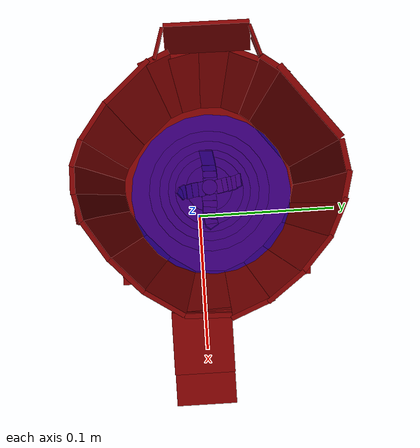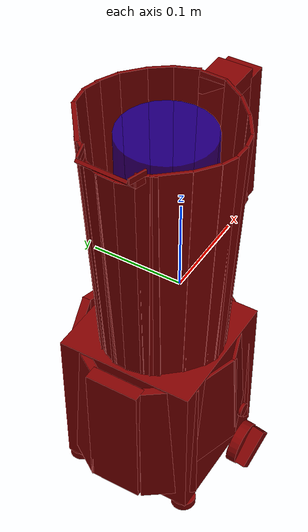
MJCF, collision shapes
<?xml version='1.0' encoding='UTF-8'?>
<mujoco model="model">
  <option timestep="0.002" gravity="0.0 0.0 -9.81"/>
  <compiler angle="radian"/>
  <asset>
    <mesh file="visuals/blade.obj" name="blade_vis"/>
    <mesh file="visuals/Body001.obj" name="Body001_vis"/>
    <mesh file="visuals/knob_speed.obj" name="knob_speed_vis"/>
    <mesh file="visuals/pitcher.obj" name="pitcher_vis"/>
    <mesh file="visuals/pitcher_main.obj" name="pitcher_main_vis"/>
    <mesh file="visuals/power_button.obj" name="power_button_vis"/>
    <texture file="visuals/T_BC001.png" name="Body001_material" type="2d"/>
    <material name="Body001_material" rgba="1 1 1 1.0" texture="Body001_material" shininess="0.141421377658844" specular="1"/>
    <texture file="visuals/T_BC001.png" name="knob_speed_material" type="2d"/>
    <material name="knob_speed_material" rgba="1 1 1 1.0" texture="knob_speed_material" shininess="0.141421377658844" specular="1"/>
    <texture file="visuals/T_BC001.png" name="pitcher_material" type="2d"/>
    <material name="pitcher_material" rgba="1 1 1 1.0" texture="pitcher_material" shininess="0.141421377658844" specular="1"/>
    <texture file="visuals/T_BC001.png" name="blade_material" type="2d"/>
    <material name="blade_material" rgba="1 1 1 1.0" texture="blade_material" shininess="0.141421377658844" specular="2"/>
    <texture file="visuals/T_BC001.png" name="pitcher_main_material" type="2d"/>
    <material name="pitcher_main_material" rgba="1 1 1 0.699999988079071" texture="pitcher_main_material" shininess="0.141421377658844" specular="0.3103448502657381"/>
    <texture file="visuals/T_BC001.png" name="power_button_material" type="2d"/>
    <material name="power_button_material" rgba="1 1 1 1.0" texture="power_button_material" shininess="0.141421377658844" specular="1"/>
  </asset>
  <default>
    <default class="visual">
      <geom conaffinity="0" contype="0" group="1" type="mesh"/>
    </default>
    <default class="collision">
      <geom group="0" rgba="0.5 0 0 0.5" density="1.0" solref="0.004 1" solimp="0.998 0.998 0.001"/>
    </default>
    <default class="spawn">
      <geom group="0" rgba="1 1 1 0.5" contype="0" conaffinity="0"/>
      <site group="0" rgba="1 1 1 0.5"/>
    </default>
    <default class="region">
      <geom group="1" conaffinity="0" contype="0" rgba="0 1 0 0" mass="0"/>
    </default>
  </default>
  <worldbody>
    <body>
      <body name="object">
        <geom mesh="Body001_vis" type="mesh" solimp="0.998 0.998 0.001" solref="0.001 1" friction="0.95 0.3 0.1" class="visual" material="Body001_material"/>
        <geom type="box" pos="-0.02042541 0.01057764 -0.13568166" size="0.07114976644515991 0.07396972179412842 0.08590729534626007" quat="1.0 0.0 0.0 0.0" class="collision"/>
        <geom type="cylinder" pos="-0.07927304 -0.05410407 -0.22727646" size="0.01308267842978239 0.00483639445155859" quat="1.0 0.0 0.0 0.0" class="collision"/>
        <geom type="cylinder" pos="0.03833302 -0.05410407 -0.22727646" size="0.01308267842978239 0.00483639445155859" quat="1.0 0.0 0.0 0.0" class="collision"/>
        <geom type="cylinder" pos="-0.07927304 0.07581795 -0.22727646" size="0.01308267842978239 0.00483639445155859" quat="1.0 0.0 0.0 0.0" class="collision"/>
        <geom type="cylinder" pos="0.03833302 0.07581795 -0.22727646" size="0.01308267842978239 0.00483639445155859" quat="1.0 0.0 0.0 0.0" class="collision"/>
        <geom type="box" pos="-0.10676947 0.00986008 -0.12931117" size="0.007698316592723131 0.02908378839492798 0.07778923213481903" quat="1.0 0.0 0.0 0.0" class="collision"/>
        <geom type="box" pos="-0.09307648 0.05724273 -0.12931117" size="0.0043806531466543674 0.029083792120218277 0.07767295092344284" quat="0.9581294655799866 0.006108240690082312 0.020496509969234467 -0.28553542494773865" class="collision"/>
        <geom type="box" pos="-0.05130488 0.09121427 -0.12931117" size="0.00438065268099308 0.029083792120218277 0.07767295092344284" quat="0.8213495016098022 0.012194070965051651 0.01757046952843666 -0.5700241923332214" class="collision"/>
        <geom type="box" pos="0.00247312 0.09383306 -0.12931117" size="0.0043806531466543674 0.02908378094434738 0.07767295092344284" quat="0.6026906967163086 0.017064303159713745 0.01289287582039833 -0.7976882457733154" class="collision"/>
        <geom type="box" pos="0.04734783 0.06408088 -0.12931117" size="0.004380653612315655 0.02908378839492798 0.07767295092344284" quat="0.3239506483078003 0.020233428105711937 0.006930013187229633 -0.9458321928977966" class="collision"/>
        <geom type="box" pos="0.06587125 0.01352581 -0.12931117" size="0.008447176776826382 0.02927297353744507 0.07778920233249664" quat="1.0 0.0 0.0 0.0" class="collision"/>
        <geom type="box" pos="0.05084122 -0.03817556 -0.12931117" size="0.0043806531466543674 0.029083792120218277 0.07767295092344284" quat="0.29940521717071533 -0.020405719056725502 0.0064049335196614265 0.9538863301277161" class="collision"/>
        <geom type="box" pos="0.00693413 -0.06749455 -0.10871787" size="0.0016447921516373754 0.02908378653228283 0.05694369226694107" quat="0.5818799734115601 -0.017391711473464966 0.012447686865925789 0.8129934072494507" class="collision"/>
        <geom type="box" pos="-0.04462788 -0.06848730 -0.10930674" size="0.0015786336734890938 0.029083790257573128 0.05753026157617569" quat="0.8063479661941528 -0.012643959373235703 0.01724955067038536 0.5910546183586121" class="collision"/>
        <geom type="box" pos="-0.08972238 -0.04093677 -0.12931117" size="0.004380652215331793 0.02908378653228283 0.07767295092344284" quat="0.9504324793815613 -0.006635755300521851 0.020331859588623047 0.31019455194473267" class="collision"/>
        <body name="power_button">
          <joint axis="0.0 1.0 0.0" pos="-0.01973970 -0.08719894 -0.12013547" limited="true" name="power_button_joint" range="0.0 0.001" type="slide" damping="1" frictionloss="1" armature=".01" stiffness="0.3"  springref="-0.3"/>
          <geom mesh="power_button_vis" type="mesh" solimp="0.998 0.998 0.001" solref="0.001 1" friction="0.95 0.3 0.1" class="visual" material="power_button_material"/>
          <geom class="collision" type="cylinder" pos="-0.01981876 -0.08815787 -0.12011459" size="0.007343614939600229 0.0016827437793835998" quat="0.7071067094802856 0.7071068286895752 0.0 0.0" name="power_button_main"/>
      </body>
        <body name="pitcher">
          <geom mesh="pitcher_vis" type="mesh" solimp="0.998 0.998 0.001" solref="0.001 1" friction="0.95 0.3 0.1" class="visual" material="pitcher_material"/>
          <geom class="collision" type="box" pos="0.10180768 -0.00152560 0.12173009" size="0.010741519741714 0.017770325765013695 0.07394962012767792" quat="1.0 0.0 0.0 0.0" name="pitcher_handle_1"/>
          <geom class="collision" type="box" pos="0.07689810 -0.00152560 0.04301011" size="0.008844220079481602 0.01777033880352974 0.024057047441601753" quat="0.5734533071517944 -4.337584148605229e-15 -0.8192382454872131 -1.1007189471001766e-07" name="pitcher_handle_0"/>
          <geom class="collision" type="box" pos="0.07434225 -0.00152562 0.19721279" size="0.018335478380322456 0.01777028664946556 0.008909441530704498" quat="1.0 0.0 0.0 0.0" name="pitcher_handle_2"/>
          <geom type="cylinder" pos="-0.02037487 0.00834738 -0.00868030" size="0.017309583723545074 0.013339472934603691" quat="1.0 0.0 0.0 0.0" class="collision"/>
          <geom type="cylinder" pos="-0.01921554 0.00850766 -0.04367529" size="0.04706339165568352 0.003497780067846179" quat="1.0 0.0 0.0 0.0" class="collision"/>
          <geom type="cylinder" pos="-0.01921554 0.00850766 -0.03841021" size="0.03889162465929985 0.0028904490172863007" quat="1.0 0.0 0.0 0.0" class="collision"/>
          <geom type="cylinder" pos="-0.01921554 0.00850766 -0.03287265" size="0.03192101791501045 0.0023723894264549017" quat="1.0 0.0 0.0 0.0" class="collision"/>
          <geom type="cylinder" pos="-0.01921554 0.00850766 -0.02795564" size="0.026319386437535286 0.0019560728687793016" quat="1.0 0.0 0.0 0.0" class="collision"/>
          <body name="blade">
            <geom mesh="blade_vis" type="mesh" solimp="0.998 0.998 0.001" solref="0.001 1" friction="0.95 0.3 0.1" class="visual" material="blade_material"/>
            <geom type="cylinder" pos="-0.02076192 0.00860307 0.01564751" size="0.005578401032835245 0.009748686105012894" quat="1.0 0.0 0.0 0.0" class="collision"/>
            <geom type="box" pos="-0.04265455 0.00825935 0.01769042" size="0.005888754967600107 0.005354186054319143 0.0005539986887015402" quat="0.9403565526008606 0.22859342396259308 0.2510433495044708 0.021257082000374794" class="collision"/>
            <geom type="box" pos="-0.03521201 0.00907233 0.01427903" size="0.002375200856477022 0.005354185588657856 0.0005539986887015402" quat="0.9515479207038879 0.15689902007579803 0.2630090117454529 0.02766765095293522" class="collision"/>
            <geom type="box" pos="-0.03051270 0.00940451 0.01282373" size="0.002375200856477022 0.005354185588657856 0.0005539986887015402" quat="0.9828904867172241 0.15931963920593262 0.09243089705705643 -0.00021640739578288049" class="collision"/>
            <geom type="box" pos="-0.02577794 0.00949904 0.01218187" size="0.002375200856477022 0.005354185588657856 0.0005539986887015402" quat="0.9911357164382935 0.09542809426784515 0.09225142747163773 0.005761029198765755" class="collision"/>
            <geom type="box" pos="-0.01333908 0.00788426 0.01245780" size="0.002375201089307666 0.005354185588657856 0.0005539986887015402" quat="0.9974440336227417 -0.06621213257312775 0.0006647424306720495 0.026849370449781418" class="collision"/>
            <geom type="box" pos="-0.00857405 0.00817717 0.01282037" size="0.0023752006236463785 0.005354185588657856 0.0005539987469092011" quat="0.9935071468353271 -0.08202355355024338 -0.07651028037071228 -0.019022971391677856" class="collision"/>
            <geom type="box" pos="-0.00426517 0.00770388 0.01361521" size="0.002375200856477022 0.005354186054319143 0.0005539986887015402" quat="0.985020101070404 -0.1533612459897995 -0.07494162023067474 -0.02448371797800064" class="collision"/>
            <geom type="box" pos="0.00060961 0.00783374 0.01519256" size="0.002375201089307666 0.005354186054319143 0.0005539986887015402" quat="0.957770824432373 -0.15528972446918488 -0.24198324978351593 0.0020541767589747906" class="collision"/>
            <geom type="box" pos="0.00469122 0.00816380 0.01721432" size="0.002375200856477022 0.005354185588657856 0.0005539986887015402" quat="0.9437424540519714 -0.2432917356491089 -0.21870483458042145 0.04824477806687355" class="collision"/>
            <geom type="box" pos="0.00715111 0.00869347 0.01893833" size="0.002375200856477022 0.005354185588657856 0.0005539986887015402" quat="0.8137325048446655 -0.31561368703842163 -0.3493519723415375 0.340852826833725" class="collision"/>
            <geom type="box" pos="-0.02231131 0.02349328 0.02043260" size="0.002061778213828802 0.005354185588657856 0.0005539987469092011" quat="0.7475223541259766 0.29476454854011536 0.07653047889471054 -0.5903111696243286" class="collision"/>
            <geom type="box" pos="-0.02183516 0.01964069 0.01909816" size="0.002375200856477022 0.005354185588657856 0.0005539986887015402" quat="0.7485984563827515 0.2202669084072113 0.013303541578352451 -0.6252246499061584" class="collision"/>
            <geom type="box" pos="-0.02110768 0.01589881 0.01835756" size="0.002375200856477022 0.005354185122996569 0.0005539986887015402" quat="0.7479897737503052 0.18121476471424103 -0.03297616168856621 -0.6376402378082275" class="collision"/>
            <geom type="box" pos="-0.02084015 0.00691306 0.01769365" size="0.002375200856477022 0.005354185588657856 0.0005539986887015402" quat="0.7766215205192566 -0.04996641352772713 0.0434492826461792 -0.6264778971672058" class="collision"/>
            <geom type="box" pos="-0.01982181 0.00222140 0.01786771" size="0.002375200856477022 0.005354185588657856 0.0005539986887015402" quat="0.7438734173774719 -0.11205487698316574 -0.00503773195669055 -0.6588404178619385" class="collision"/>
            <geom type="box" pos="-0.01957814 -0.00207446 0.01885106" size="0.002375200856477022 0.005354185122996569 0.0005539986887015402" quat="0.7338717579841614 -0.16533643007278442 0.04242377728223801 -0.657492458820343" class="collision"/>
            <geom type="box" pos="-0.01859206 -0.00667258 0.02074927" size="0.002375200856477022 0.005354185588657856 0.0005539986887015402" quat="0.7303425669670105 -0.2751429080963135 -0.08346966654062271 -0.6196200251579285" class="collision"/>
            <geom type="box" pos="-0.01819240 -0.01086244 0.02283526" size="0.002375200856477022 0.005354185588657856 0.0005539986887015402" quat="0.7495883703231812 -0.3710985481739044 -0.09950321167707443 -0.538982629776001" class="collision"/>
            <geom type="box" pos="-0.01714387 -0.01242056 0.02436394" size="0.002375200856477022 0.005354185588657856 0.0005539986887015402" quat="0.8404426574707031 -0.4668102562427521 -0.06121203675866127 -0.26832324266433716" class="collision"/>
            <geom type="box" pos="-0.02293829 0.02692579 0.02252475" size="0.002061778213828802 0.005354185588657856 0.0005539987469092011" quat="0.740454375743866 0.31209465861320496 0.06276106834411621 -0.59193354845047" class="collision"/>
            <geom type="box" pos="-0.02420297 0.03007707 0.02487276" size="0.002061778213828802 0.005354185122996569 0.0005539987469092011" quat="0.7192190885543823 0.35832902789115906 0.025174571201205254 -0.5947188138961792" class="collision"/>
          </body>
          <body name="pitcher_main">
            <geom class="region" type="cylinder" size="0.04802083596587181 0.07960508018732071" pos="-0.01281661 0.00844240 0.11144938" rgba="0 0 1 0.5" name="reg_int"/>
            <geom mesh="pitcher_main_vis" type="mesh" solimp="0.998 0.998 0.001" solref="0.001 1" friction="0.95 0.3 0.1" class="visual" material="pitcher_main_material"/>
            <geom type="box" pos="-0.05911675 0.06439759 0.08195866" size="0.028023838996887207 0.0020834733732044697 0.13005328178405762" quat="0.9469504356384277 -0.02456554025411606 -0.008309957571327686 0.3203316628932953" class="collision"/>
            <geom type="box" pos="0.00260058 0.07604367 0.08192693" size="0.012392974458634853 0.0014961141860112548 0.12993013858795166" quat="0.9747089147567749 -0.025285642594099045 0.00575824873521924 -0.22196851670742035" class="collision"/>
            <geom type="box" pos="-0.02946256 0.08153011 0.08165492" size="0.009814273566007614 0.0016803478356450796 0.1300542801618576" quat="0.996727466583252 -0.025856800377368927 -0.0019861594773828983 0.07656250149011612" class="collision"/>
            <geom type="box" pos="-0.01363651 0.08146332 0.08171252" size="0.009814273566007614 0.0016803450416773558 0.1300542801618576" quat="0.9917929768562317 -0.025728818029165268 0.0032478105276823044 -0.1251964271068573" class="collision"/>
            <geom type="box" pos="0.02181979 0.06321589 0.08189169" size="0.013895096257328987 0.001496114069595933 0.13005328178405762" quat="0.9332175850868225 -0.02420927956700325 0.009296861477196217 -0.3583747446537018" class="collision"/>
            <geom type="box" pos="0.03893989 0.04498452 0.08182188" size="0.013895098119974136 0.0014961148845031857 0.1301158219575882" quat="0.8938452005386353 -0.023187892511487007 0.011612174101173878 -0.44762516021728516" class="collision"/>
            <geom type="box" pos="0.04954776 0.02614470 0.08176681" size="0.013895098119974136 0.001496114069595933 0.13005328178405762" quat="0.8285778164863586 -0.021494749933481216 0.01450851745903492 -0.5592730045318604" class="collision"/>
            <geom type="box" pos="0.05162664 0.00251551 0.08169228" size="0.013895095326006413 0.0014961144188418984 0.1301158219575882" quat="0.6938533186912537 -0.017999760806560516 0.018668951466679573 -0.7196492552757263" class="collision"/>
            <geom type="box" pos="0.04433440 -0.01925489 0.08190767" size="0.013895101845264435 0.0014961172128096223 0.13005328178405762" quat="0.4744383990764618 -0.012307754717767239 0.02282630279660225 -0.8799066543579102" class="collision"/>
            <geom type="box" pos="0.02778749 -0.03908959 0.08200157" size="0.013895097188651562 0.0014961173292249441 0.13005328178405762" quat="0.3675457537174225 -0.009534777142107487 0.024116583168506622 -0.9296438097953796" class="collision"/>
            <geom type="box" pos="0.00730769 -0.05532394 0.08214959" size="0.013895098119974136 0.0014961144188418984 0.12987081706523895" quat="0.27956363558769226 -0.007252366282045841 0.02489827573299408 -0.9597768783569336" class="collision"/>
            <geom type="box" pos="-0.01035215 -0.06387544 0.08189673" size="0.00841239932924509 0.001496114069595933 0.12990111112594604" quat="0.10235937684774399 -0.002655389253050089 0.025796832516789436 -0.9944093823432922" class="collision"/>
            <geom type="box" pos="-0.02532836 -0.06565578 0.08174028" size="0.00841239932924509 0.0014961144188418984 0.13000434637069702" quat="0.014749111607670784 -0.0003826175525318831 -0.025930186733603477 0.9995548725128174" class="collision"/>
            <geom type="box" pos="-0.03884549 -0.06317118 0.08182737" size="0.008412400260567665 0.0014961141860112548 0.12996487319469452" quat="0.18885262310504913 -0.004899164661765099 -0.025466036051511765 0.9816629886627197" class="collision"/>
            <geom type="box" pos="-0.05541575 -0.05282766 0.08190267" size="0.013023199513554573 0.0014961143024265766 0.13005898892879486" quat="0.3136133849620819 -0.008135673590004444 -0.024623794481158257 0.9491965770721436" class="collision"/>
            <geom type="box" pos="-0.07621097 -0.03260189 0.08200802" size="0.01790199801325798 0.0014961148845031857 0.13000606000423431" quat="0.4126756191253662 -0.010705524124205112 -0.023620188236236572 0.9105088114738464" class="collision"/>
            <geom type="box" pos="-0.08040297 0.04639342 0.08196995" size="0.009814275428652763 0.001680344925262034 0.1299208700656891" quat="0.8943629860877991 -0.02320133149623871 -0.011585312895476818 0.44658970832824707" class="collision"/>
            <geom type="box" pos="-0.08907313 0.03058378 0.07538246" size="0.009814274497330189 0.0016803450416773558 0.12314633280038834" quat="0.835515558719635 -0.02167471870779991 -0.014238237403333187 0.5488545298576355" class="collision"/>
            <geom type="box" pos="-0.09261387 0.01573712 0.07518756" size="0.009814275428652763 0.0016803451580926776 0.12331690639257431" quat="0.724690854549408 -0.018799737095832825 -0.017863113433122635 0.6885859966278076" class="collision"/>
            <geom type="box" pos="-0.09170040 -0.00161858 0.07531489" size="0.009814274497330189 0.0016803448088467121 0.1232306957244873" quat="0.6293444037437439 -0.016326285898685455 -0.020148780196905136 0.7766937017440796" class="collision"/>
            <geom type="box" pos="-0.08724716 -0.01795014 0.08198807" size="0.009814273566007614 0.0016803448088467121 0.12987521290779114" quat="0.5572676658630371 -0.014456488192081451 -0.02152976021170616 0.8299278616905212" class="collision"/>
            <geom type="box" pos="-0.10504430 0.01151608 0.20798914" size="0.0253608338534832 0.0016803448088467121 0.010355044156312943" quat="0.6644766330718994 -0.25481677055358887 -0.2662017047405243 0.6501352787017822" class="collision"/>
            <geom type="box" pos="-0.10047988 0.03951485 0.21423782" size="0.009460925124585629 0.0009152903221547604 0.0032383257057517767" quat="0.9881901741027832 0.0 0.0 0.15323251485824585" class="collision"/>
            <geom type="box" pos="-0.09747223 0.04019827 0.20782709" size="0.006173263303935528 0.0009152903221547604 0.0036670449189841747" quat="0.9871951937675476 0.0 0.0 0.15951703488826752" class="collision"/>
            <geom type="box" pos="-0.10187519 -0.01728777 0.21423782" size="0.009460925124585629 0.0009152903221547604 0.0032383257057517767" quat="0.9885324835777283 0.0 -0.0 -0.15100839734077454" class="collision"/>
            <geom type="box" pos="-0.09901945 -0.01845303 0.20782709" size="0.006173263303935528 0.0009152903221547604 0.0036670449189841747" quat="0.9894733428955078 0.0 -0.0 -0.14471545815467834" class="collision"/>
          </body>
        </body>
        <body name="knob_speed">
          <joint axis="-1.0883673370624386e-18 0.9950984716415405 0.09888920187950134" pos="-0.01927631 -0.09581358 -0.17462131" limited="true" name="knob_speed_joint" range="0.0 4.71238898038469" type="hinge" damping="0.05" frictionloss="0.1" armature="0.001"/>
          <geom mesh="knob_speed_vis" type="mesh" solimp="0.998 0.998 0.001" solref="0.001 1" friction="0.95 0.3 0.1" class="visual" material="knob_speed_material"/>
          <geom type="cylinder" pos="-0.01871967 -0.08852132 -0.17376384" size="0.023056725040078163 0.005283305421471596" quat="0.6761780381202698 0.7367382645606995 -6.723511375239752e-18 6.723515097552509e-18" class="collision" density="0.001"/>
          <geom class="collision" type="box" pos="-0.01948381 -0.10019795 -0.17414394" size="0.00802884716540575 0.006722955498844385 0.021096782758831978" quat="0.9083757996559143 0.058258578181266785 0.41322752833366394 -0.026502244174480438" name="knob_speed_main" density="0.001"/>
        </body>
        <geom class="region" name="reg_main" type="box" pos="-0.020539880000000003 0.010720274999999994 0.0" size="0.09644665 0.099013415 0.23181493"/>
        </body>
      <site rgba="0 1 0 0" size="0.005" pos="-0.01469677 0.00740191 0.21611013" name="anchor_site"/>
    </body>
  </worldbody>
  <actuator>
    <motor name="knob_speed_joint_actuator" joint="knob_speed_joint" gear="10"/>
    <motor name="power_button_joint_actuator" joint="power_button_joint" gear="0.5"/>
  </actuator>
</mujoco>
